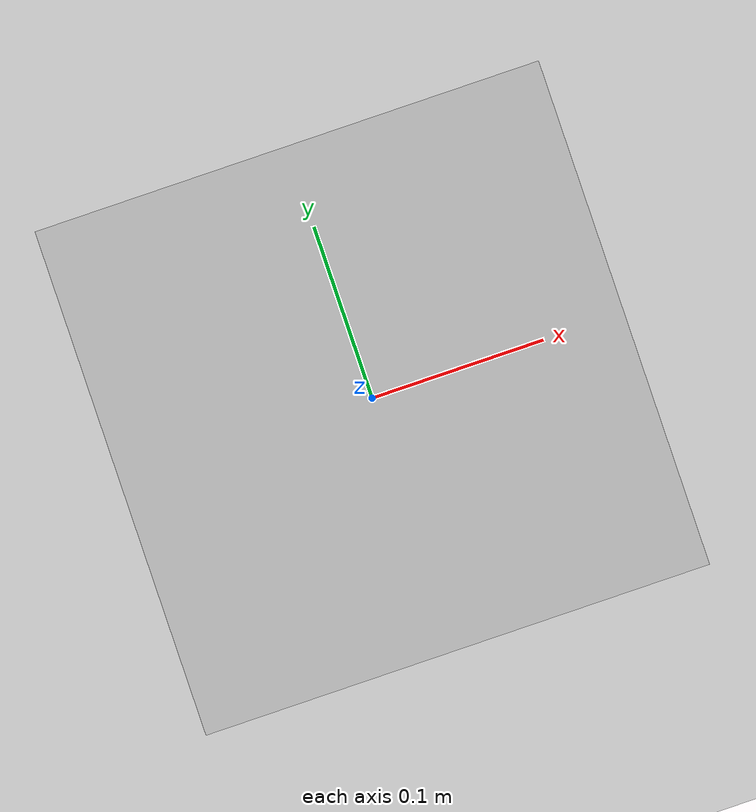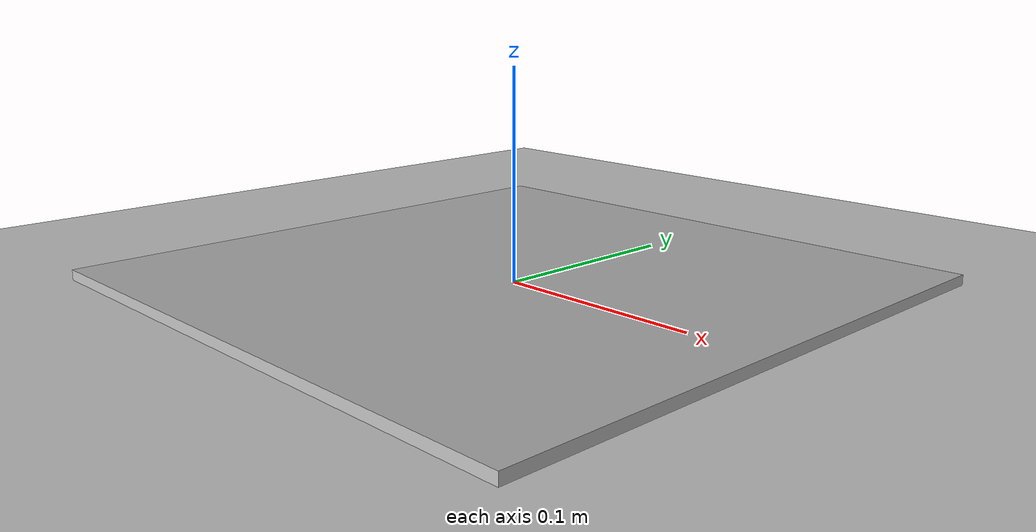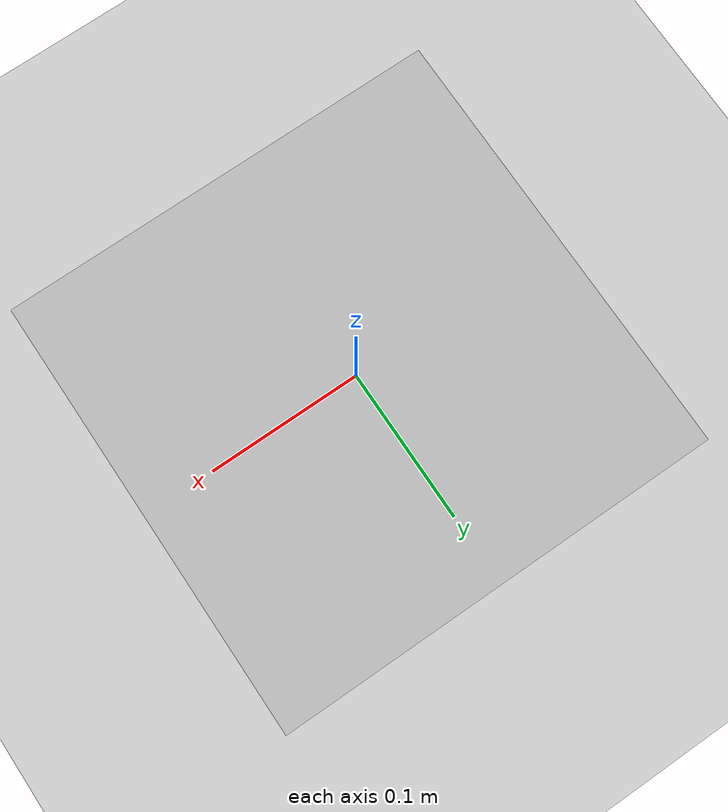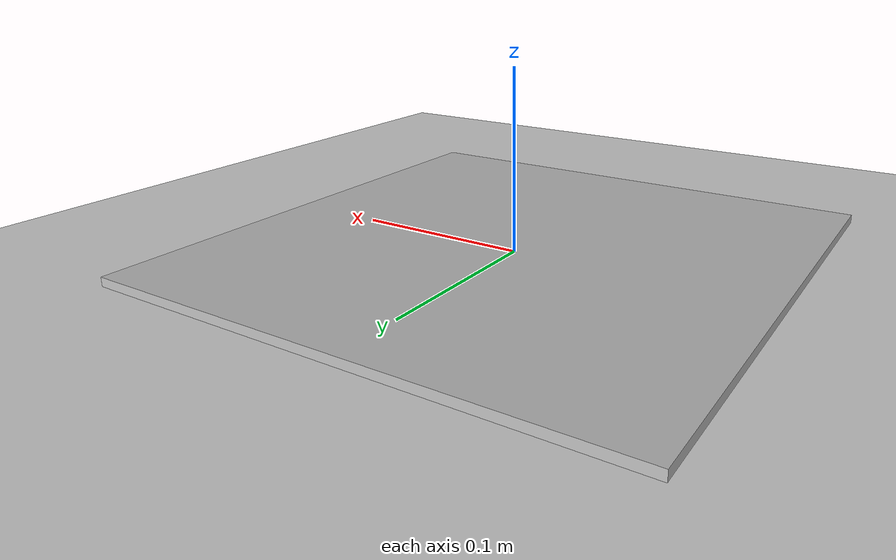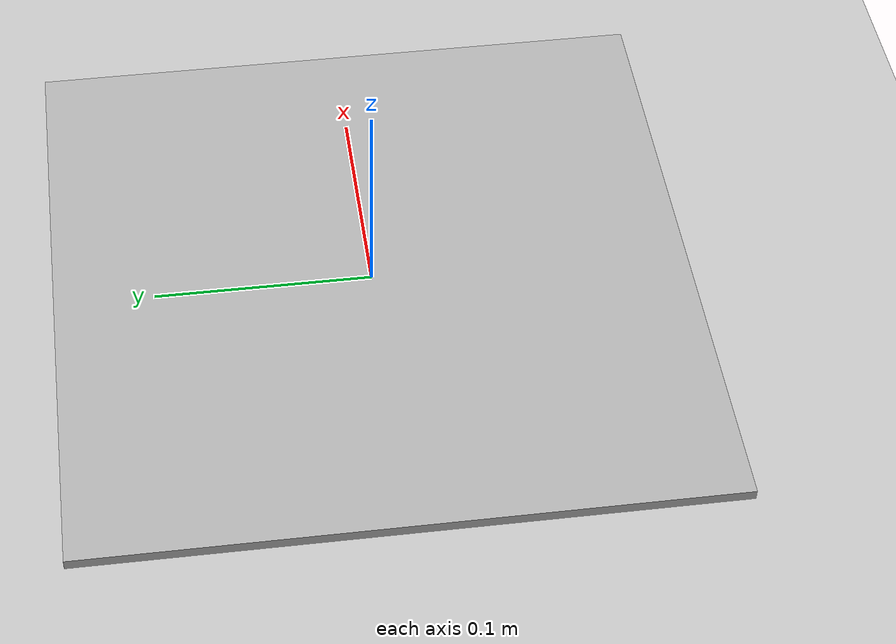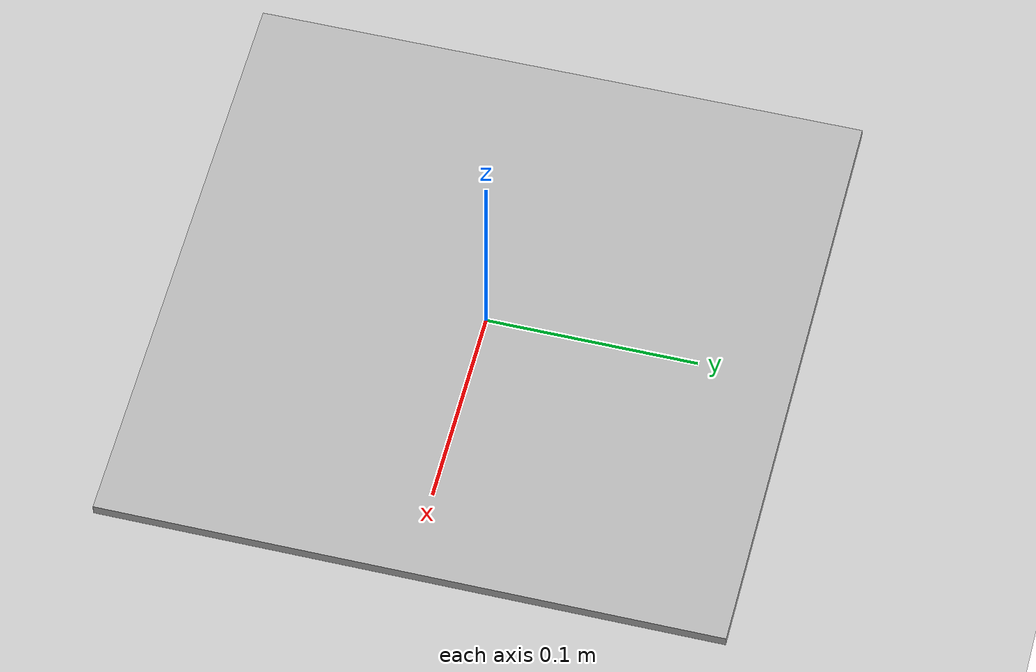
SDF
<?xml version="1.0" ?>
<sdf version="1.6">
  <world name="default">
    <light name='sun' type='directional'>
      <cast_shadows>1</cast_shadows>
      <pose frame=''>0 0 10 0 -0 0</pose>
      <diffuse>0.8 0.8 0.8 1</diffuse>
      <specular>0.1 0.1 0.1 1</specular>
      <attenuation>
        <range>1000</range>
        <constant>0.9</constant>
        <linear>0.01</linear>
        <quadratic>0.001</quadratic>
      </attenuation>
      <direction>-0.5 0.5 -1</direction>
    </light>

    <!--Ground-->
    <model name='ground_plane'>
      <static>1</static>
      <link name='link'>
        <collision name='collision'>
          <geometry>
            <plane>
              <normal>0 0 1</normal>
              <size>100 100</size>
            </plane>
          </geometry>
          <surface>
            <friction>
              <ode>
                <mu>100</mu>
                <mu2>50</mu2>
              </ode>
              <torsional>
                <ode/>
              </torsional>
            </friction>
            <contact>
              <ode/>
            </contact>
            <bounce/>
          </surface>
          <max_contacts>10</max_contacts>
        </collision>
        <visual name='visual'>
          <cast_shadows>0</cast_shadows>
          <geometry>
            <plane>
              <normal>0 0 1</normal>
              <size>100 100</size>
            </plane>
          </geometry>
          <material>
            <script>
              <uri>file://media/materials/scripts/gazebo.material</uri>
              <name>Gazebo/Grey</name>
            </script>
          </material>
        </visual>
        <self_collide>0</self_collide>
        <kinematic>0</kinematic>
      </link>
    </model>

    <!-- checkers board-->
    <include>
        <uri>model://checkers_board</uri>
        <pose frame=''>0 0 0 0 0 0</pose>
    </include>

  </world>
</sdf>

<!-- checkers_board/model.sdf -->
<sdf version="1.6">
  <model name="Checkers_Board">
    <static>true</static>
    <link name="checkers_board">
      <pose>0 0 0.0025 0 0 0</pose>
      <collision name="collision">
        <geometry>
          <box>
            <size>.2921 0.2921 .005</size>
          </box>
        </geometry>
        <surface>
            <friction>
            <ode>
                <mu>0.08</mu>
                <mu2>0.08</mu2>
            </ode>
            </friction>
        </surface>
      </collision>
      <visual name="visual">
        <cast_shadows>false</cast_shadows>
        <geometry>
          <box>
            <size>.2921 0.2921 .005</size>
          </box>
        </geometry>
        <material>
            <script>
                <uri>model://checkers_board/materials/scripts</uri>
                <uri>model://checkers_board/materials/textures</uri>
                <name>Checkers/Board</name>
            </script>
        </material>
      </visual>
     <inertial>
        <mass>0.068</mass>
        <inertia>
          <ixx>0.00048</ixx>
          <ixy>0.0</ixy>
          <ixz>0.0</ixz>
          <iyy>0.00048</iyy>
          <iyz>0.0</iyz>
          <izz>0.001</izz>
        </inertia>
      </inertial>
    </link>
  </model>

</sdf>
